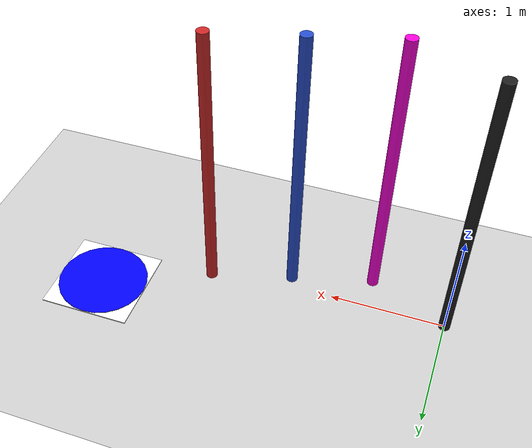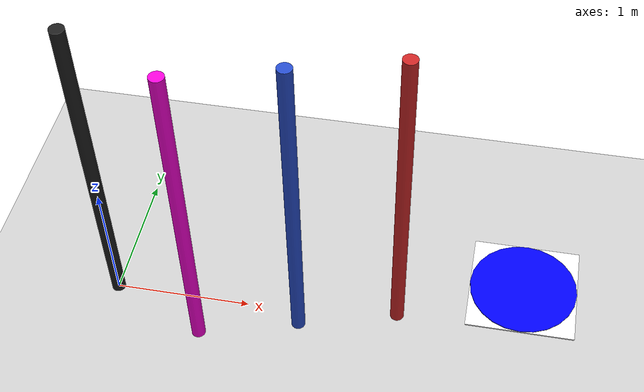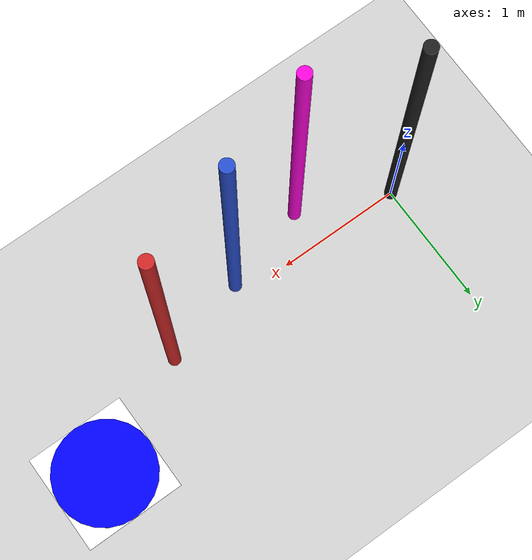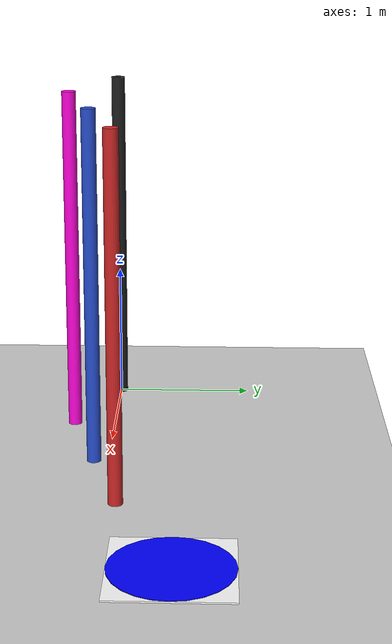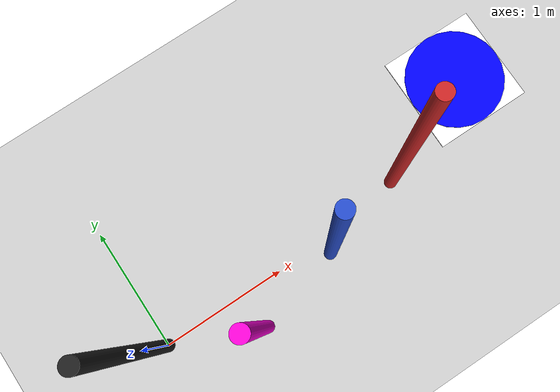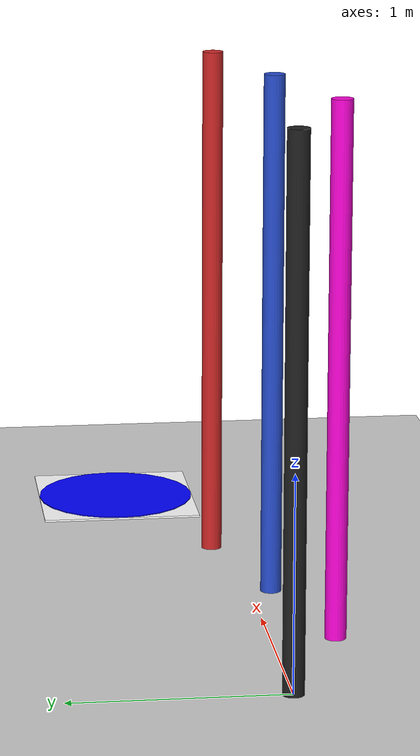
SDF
<?xml version="1.0"?>
<sdf version="1.6">
  <world name="slalom_world">

    <!-- Configuração da iluminação -->
    <include>
      <uri>model://sun</uri>
    </include>

    <!-- Plano como chão -->
    <include>
      <uri>model://ground_plane</uri>
    </include>

    <!-- Travessias verticais para o slalom -->
    <model name="slalom_poles">
      <static>true</static>
      <pose>0 0 0 0 0 0</pose>
      <link name="base">

        <!-- Geração das traves em uma linha -->
        <visual name="trave_1">
          <geometry>
            <cylinder>
              <radius>0.05</radius>
              <length>2.5</length>
            </cylinder>
          </geometry>
          <material>
            <script>
              <uri>file://media/materials/scripts/gazebo.material</uri>
              <name>Gazebo/Black</name>
            </script>
          </material>
          <pose>0 0 1.25 0 0 0</pose>
        </visual>

        <visual name="trave_2">
          <geometry>
            <cylinder>
              <radius>0.05</radius>
              <length>2.5</length>
            </cylinder>
          </geometry>
          <material>
            <ambient>0.98 0.01 0.84 1</ambient>
            <diffuse>0.98 0.01 0.84 1</diffuse>
          </material>
          <pose>0.7 -0.3 1.25 0 0 0</pose>
        </visual>

        <visual name="trave_3">
          <geometry>
            <cylinder>
              <radius>0.05</radius>
              <length>2.5</length>
            </cylinder>
          </geometry>
          <material>
            <script>
              <uri>file://media/materials/scripts/gazebo.material</uri>
              <name>Gazebo/Blue</name>
            </script>
          </material>
          <pose>1.4 -0.1 1.25 0 0 0</pose>
        </visual>

        <visual name="trave_4">
          <geometry>
            <cylinder>
              <radius>0.05</radius>
              <length>2.5</length>
            </cylinder>
          </geometry>
          <material>
            <script>
              <uri>file://media/materials/scripts/gazebo.material</uri>
              <name>Gazebo/Red</name>
            </script>
          </material>
          <pose>2.1 0.1 1.25 0 0 0</pose>
        </visual>
      </link>
    </model>

    <!-- Base quadrada branca com círculo azul -->
    <model name="drone_start_base">
      <static>true</static>
      <pose>3.0 0.5 0 0 0 0</pose>
      <link name="base">
        <visual name="square_base">
          <geometry>
            <box>
              <size>0.8 0.8 0.01</size>
            </box>
          </geometry>
          <material>
            <ambient>1 1 1 1</ambient>
            <diffuse>1 1 1 1</diffuse>
          </material>
          <pose>0 0 0.005 0 0 0</pose>
        </visual>
        <visual name="circle_marker">
          <geometry>
            <cylinder>
              <radius>0.4</radius>
              <length>0.01</length>
            </cylinder>
          </geometry>
          <material>
            <ambient>0 0 1 1</ambient>
            <diffuse>0 0 1 1</diffuse>
          </material>
          <pose>0 0 0.01 0 0 0</pose>
        </visual>
      </link>
    </model>
  </world>
</sdf>
